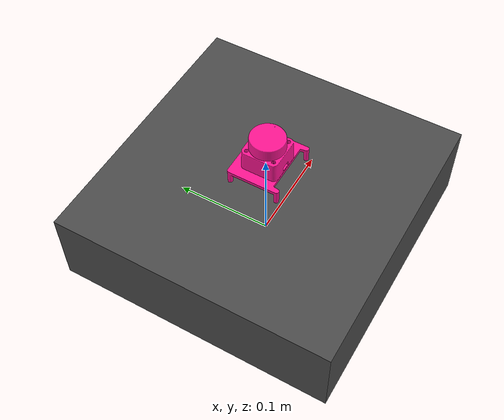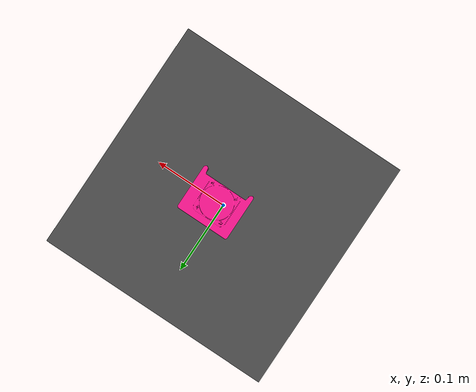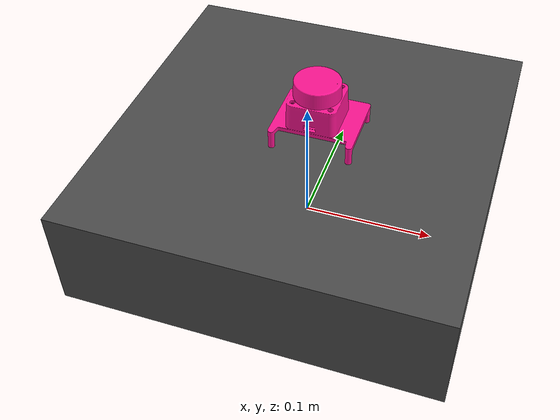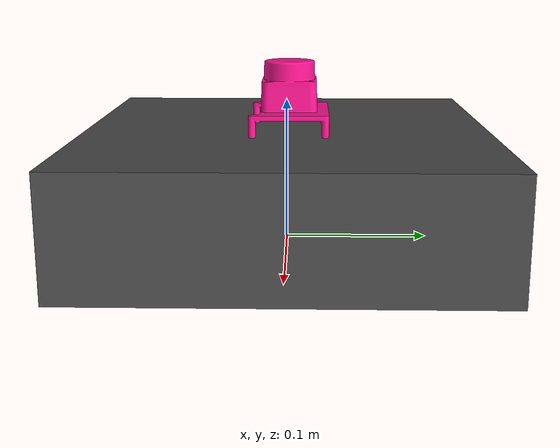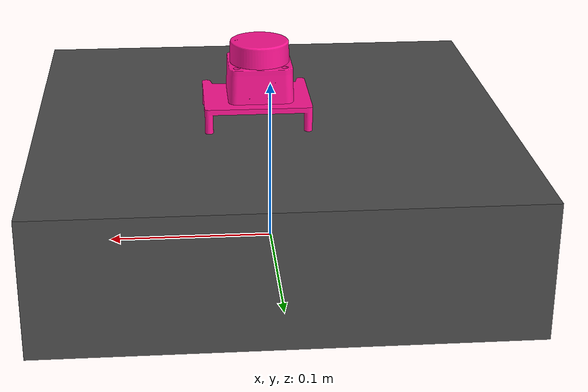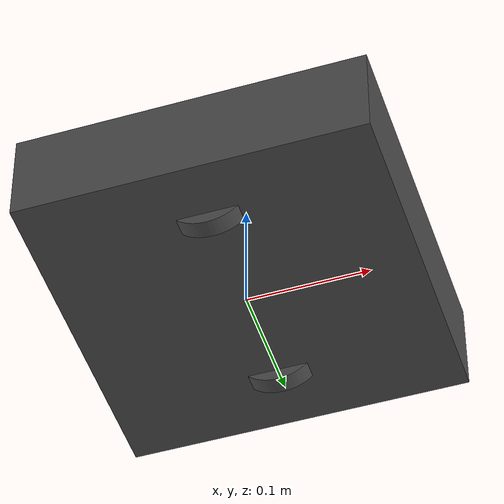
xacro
<?xml version="1.0" ?>
<robot name="zeta2" xmlns:xacro="http://ros.org/wiki/xacro">
  <xacro:include filename="$(find zeta2_description)/urdf/common_properties.xacro"/>

  <link name="base_footprint"/>
<!--main frame-->
  <joint name="base_joint" type="fixed">
    <parent link="base_footprint"/>
    <child link="base_link" />
    <origin xyz="0 0 0.04" rpy="0 0 0"/>
  </joint>

  <link name="base_link">
    <visual>
      <origin xyz="0 0 0" rpy="0 0 0"/>
      <geometry>
        <box size="${base_length} ${base_width} ${base_height}"/>
      </geometry>
      <material name="dark"/>
    </visual>
    <collision>
      <origin xyz="0 0 0 " rpy="0 0 0"/>
      <geometry>
        <box size="${base_length} ${base_width} ${base_height}"/>
      </geometry>
    </collision>
  </link>

<!--wheel left-->
  <joint name="wheel_left_joint" type="continuous">
    <parent link="base_link"/>
    <child link="wheel_left_link"/>
    <origin xyz="0 0.087 -0.015" rpy="0 0 0"/>
    <axis xyz="0 1 0"/>
  </joint>

  <link name="wheel_left_link">
    <visual>
      <origin xyz="0 0 0" rpy="0 0 0"/>
      <geometry>
        <mesh filename="package://zeta2_description/meshes/zeta/zeta_left_wheel.stl" />
      </geometry>
      <material name="dark"/>
    </visual>
    <collision>
      <origin xyz="0 0 0" rpy="1.57 0 0"/>
      <geometry>
        <cylinder length="${wheel_width}" radius="${wheel_radius}"/>
      </geometry>
    </collision>
  </link>

<!--wheel right-->
  <joint name="wheel_right_joint" type="continuous">
    <parent link="base_link"/>
    <child link="wheel_right_link"/>
    <origin xyz="0 -0.087 -0.015" rpy="0 0 0"/>
    <axis xyz="0 1 0"/>
  </joint>

  <link name="wheel_right_link">
    <visual>
      <origin xyz="0 0 0" rpy="0 0 0"/>
      <geometry>
        <mesh filename="package://zeta2_description/meshes/zeta/zeta_right_wheel.stl" />
      </geometry>
      <material name="dark"/>
    </visual>
    <collision>
      <origin xyz="0 0 0" rpy="1.57 0 0"/>
      <geometry>
        <cylinder length="${wheel_width}" radius="${wheel_radius}"/>
      </geometry>
    </collision>
  </link>

<!-- imu joint -->
  <joint name="imu_joint" type="fixed">
    <parent link="base_link"/>
    <child link="imu_link"/>
    <origin xyz="0.0 0.0 0.03" rpy="0 0 0"/>
  </joint>

  <link name="imu_link"/>

  <!-- camera joint -->
  <joint name="camera_joint" type="fixed">
    <origin xyz="0.14 0 0.033" rpy="0 0 0"/>
    <parent link="base_link"/>
    <child link="main_camera_optical"/>
  </joint>
  <link name="main_camera_optical"/>

<!--ldlidar-->
  <joint name="scan_joint" type="fixed">
    <parent link="base_link"/>
    <child link="base_scan"/>
    <origin xyz="0 0 0.08" rpy="0 0 0"/>
  </joint>
  <link name="base_scan">
    <visual>
      <origin xyz="-0.05 -0.03 -0.05" rpy="1.57 0 1.57"/>
      <geometry>
        <mesh filename="package://zeta2_description/meshes/zeta/ld06.stl" scale="0.001 0.001 0.001"/>
      </geometry>
      <material name="pink"/>
    </visual>
  </link>

</robot>

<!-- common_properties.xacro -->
<robot name="xacro_properties" xmlns:xacro="http://ros.org/wiki/xacro">

  <!-- Init colour -->
  <material name="black">
      <color rgba="0.0 0.0 0.0 1.0"/>
  </material>

  <material name="dark">
    <color rgba="0.3 0.3 0.3 1.0"/>
  </material>
  <material name="light_black">
    <color rgba="0.4 0.4 0.4 1.0"/>
  </material>

  <material name="blue">
    <color rgba="0.0 0.0 0.8 1.0"/>
  </material>

  <material name="green">
    <color rgba="0.0 0.8 0.0 1.0"/>
  </material>

  <material name="grey">
    <color rgba="0.5 0.5 0.5 1.0"/>
  </material>

  <material name="orange">
    <color rgba="${255/255} ${108/255} ${10/255} 1.0"/>
  </material>

  <material name="brown">
    <color rgba="${222/255} ${207/255} ${195/255} 1.0"/>
  </material>

  <material name="red">
    <color rgba="0.8 0.0 0.0 1.0"/>
  </material>

  <material name="pink">
    <color rgba="${255/255} ${20/255} ${147/255} 1.0"/>
  </material>

  <material name="white">
    <color rgba="1.0 1.0 1.0 1.0"/>
  </material>
  <!-- Define robot constants -->
  <xacro:property name="base_width" value="0.28"/>
  <xacro:property name="base_length" value="0.28"/>
  <xacro:property name="base_height" value="0.08"/>

  <xacro:property name="wheel_radius" value="0.35"/>
  <xacro:property name="wheel_width" value="0.015"/>

</robot>
